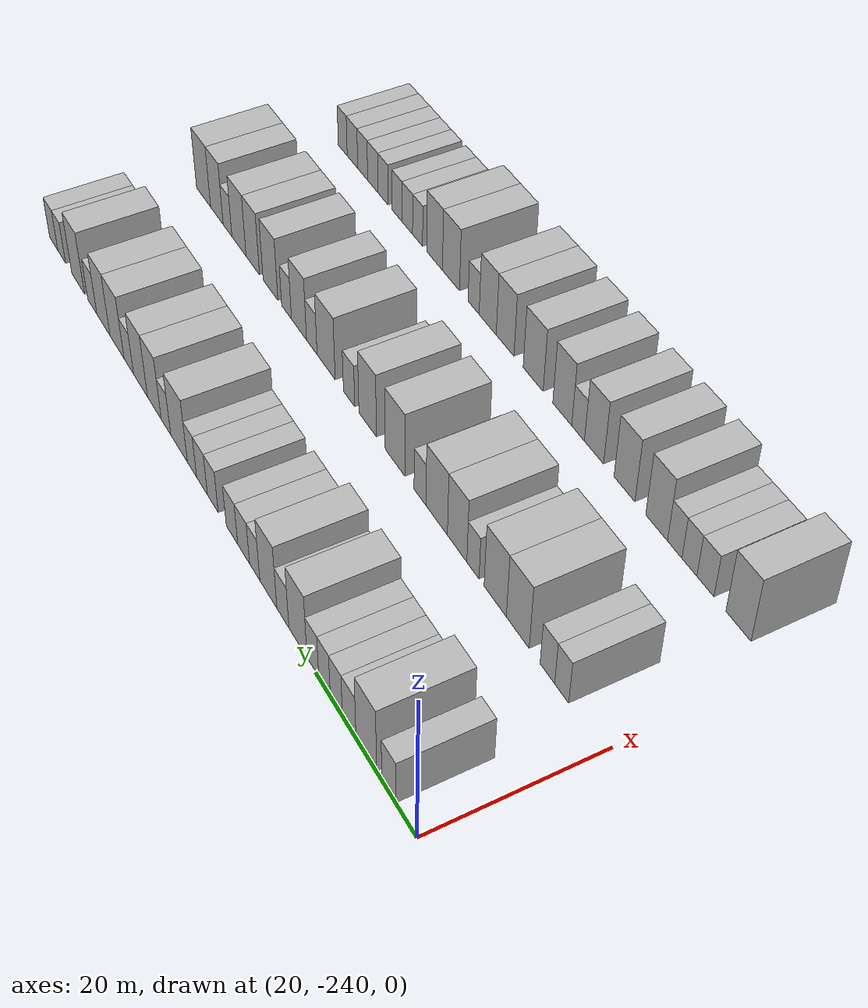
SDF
<sdf version="1.6">
 <world name="default">
  <model name="building_1">
   <static>1</static>
   <pose>25.0000 -234.6481 0 0.000000 0.000000 0.000000</pose>
   <link name="link">
    <pose>0 0 3.00 0 0 0</pose>
    <collision name="collision"><geometry><box><size>10.0000 2.7038 6.0000</size></box></geometry></collision>
    <visual name="visual">
     <cast_shadows>0</cast_shadows>
     <geometry><box><size>10.0000 2.7038 6.0000</size></box></geometry>
     <material>
      <script>
       <uri>model://HANNAS_wall/materials/scripts</uri>
       <uri>model://HANNAS_wall/materials/textures</uri>
       <name>vrc/HANNAS_wall</name>
      </script>
     </material>
    </visual>
   </link>
  </model>
  <model name="building_2">
   <static>1</static>
   <pose>25.0000 -230.2623 0 0.000000 0.000000 0.000000</pose>
   <link name="link">
    <pose>0 0 4.50 0 0 0</pose>
    <collision name="collision"><geometry><box><size>10.0000 4.0678 9.0000</size></box></geometry></collision>
    <visual name="visual">
     <cast_shadows>0</cast_shadows>
     <geometry><box><size>10.0000 4.0678 9.0000</size></box></geometry>
     <material>
      <script>
       <uri>model://HANNAS_wall/materials/scripts</uri>
       <uri>model://HANNAS_wall/materials/textures</uri>
       <name>vrc/HANNAS_wall</name>
      </script>
     </material>
    </visual>
   </link>
  </model>
  <model name="building_3">
   <static>1</static>
   <pose>25.0000 -226.8506 0 0.000000 0.000000 0.000000</pose>
   <link name="link">
    <pose>0 0 3.00 0 0 0</pose>
    <collision name="collision"><geometry><box><size>10.0000 2.7557 6.0000</size></box></geometry></collision>
    <visual name="visual">
     <cast_shadows>0</cast_shadows>
     <geometry><box><size>10.0000 2.7557 6.0000</size></box></geometry>
     <material>
      <script>
       <uri>model://HANNAS_wall/materials/scripts</uri>
       <uri>model://HANNAS_wall/materials/textures</uri>
       <name>vrc/HANNAS_wall</name>
      </script>
     </material>
    </visual>
   </link>
  </model>
  <model name="building_4">
   <static>1</static>
   <pose>25.0000 -224.2279 0 0.000000 0.000000 0.000000</pose>
   <link name="link">
    <pose>0 0 3.00 0 0 0</pose>
    <collision name="collision"><geometry><box><size>10.0000 2.4896 6.0000</size></box></geometry></collision>
    <visual name="visual">
     <cast_shadows>0</cast_shadows>
     <geometry><box><size>10.0000 2.4896 6.0000</size></box></geometry>
     <material>
      <script>
       <uri>model://HANNAS_wall/materials/scripts</uri>
       <uri>model://HANNAS_wall/materials/textures</uri>
       <name>vrc/HANNAS_wall</name>
      </script>
     </material>
    </visual>
   </link>
  </model>
  <model name="building_5">
   <static>1</static>
   <pose>25.0000 -221.7675 0 0.000000 0.000000 0.000000</pose>
   <link name="link">
    <pose>0 0 3.00 0 0 0</pose>
    <collision name="collision"><geometry><box><size>10.0000 2.4312 6.0000</size></box></geometry></collision>
    <visual name="visual">
     <cast_shadows>0</cast_shadows>
     <geometry><box><size>10.0000 2.4312 6.0000</size></box></geometry>
     <material>
      <script>
       <uri>model://HANNAS_wall/materials/scripts</uri>
       <uri>model://HANNAS_wall/materials/textures</uri>
       <name>vrc/HANNAS_wall</name>
      </script>
     </material>
    </visual>
   </link>
  </model>
  <model name="building_6">
   <static>1</static>
   <pose>25.0000 -219.2975 0 0.000000 0.000000 0.000000</pose>
   <link name="link">
    <pose>0 0 3.00 0 0 0</pose>
    <collision name="collision"><geometry><box><size>10.0000 2.5089 6.0000</size></box></geometry></collision>
    <visual name="visual">
     <cast_shadows>0</cast_shadows>
     <geometry><box><size>10.0000 2.5089 6.0000</size></box></geometry>
     <material>
      <script>
       <uri>model://HANNAS_wall/materials/scripts</uri>
       <uri>model://HANNAS_wall/materials/textures</uri>
       <name>vrc/HANNAS_wall</name>
      </script>
     </material>
    </visual>
   </link>
  </model>
  <model name="building_7">
   <static>1</static>
   <pose>25.0000 -216.0618 0 0.000000 0.000000 0.000000</pose>
   <link name="link">
    <pose>0 0 4.50 0 0 0</pose>
    <collision name="collision"><geometry><box><size>10.0000 3.9624 9.0000</size></box></geometry></collision>
    <visual name="visual">
     <cast_shadows>0</cast_shadows>
     <geometry><box><size>10.0000 3.9624 9.0000</size></box></geometry>
     <material>
      <script>
       <uri>model://HANNAS_wall/materials/scripts</uri>
       <uri>model://HANNAS_wall/materials/textures</uri>
       <name>vrc/HANNAS_wall</name>
      </script>
     </material>
    </visual>
   </link>
  </model>
  <model name="building_8">
   <static>1</static>
   <pose>25.0000 -212.7326 0 0.000000 0.000000 0.000000</pose>
   <link name="link">
    <pose>0 0 3.00 0 0 0</pose>
    <collision name="collision"><geometry><box><size>10.0000 2.6959 6.0000</size></box></geometry></collision>
    <visual name="visual">
     <cast_shadows>0</cast_shadows>
     <geometry><box><size>10.0000 2.6959 6.0000</size></box></geometry>
     <material>
      <script>
       <uri>model://HANNAS_wall/materials/scripts</uri>
       <uri>model://HANNAS_wall/materials/textures</uri>
       <name>vrc/HANNAS_wall</name>
      </script>
     </material>
    </visual>
   </link>
  </model>
  <model name="building_9">
   <static>1</static>
   <pose>25.0000 -209.4204 0 0.000000 0.000000 0.000000</pose>
   <link name="link">
    <pose>0 0 4.50 0 0 0</pose>
    <collision name="collision"><geometry><box><size>10.0000 3.9286 9.0000</size></box></geometry></collision>
    <visual name="visual">
     <cast_shadows>0</cast_shadows>
     <geometry><box><size>10.0000 3.9286 9.0000</size></box></geometry>
     <material>
      <script>
       <uri>model://HANNAS_wall/materials/scripts</uri>
       <uri>model://HANNAS_wall/materials/textures</uri>
       <name>vrc/HANNAS_wall</name>
      </script>
     </material>
    </visual>
   </link>
  </model>
  <model name="building_10">
   <static>1</static>
   <pose>25.0000 -206.2561 0 0.000000 0.000000 0.000000</pose>
   <link name="link">
    <pose>0 0 3.00 0 0 0</pose>
    <collision name="collision"><geometry><box><size>10.0000 2.4000 6.0000</size></box></geometry></collision>
    <visual name="visual">
     <cast_shadows>0</cast_shadows>
     <geometry><box><size>10.0000 2.4000 6.0000</size></box></geometry>
     <material>
      <script>
       <uri>model://HANNAS_wall/materials/scripts</uri>
       <uri>model://HANNAS_wall/materials/textures</uri>
       <name>vrc/HANNAS_wall</name>
      </script>
     </material>
    </visual>
   </link>
  </model>
  <model name="building_11">
   <static>1</static>
   <pose>25.0000 -203.6401 0 0.000000 0.000000 0.000000</pose>
   <link name="link">
    <pose>0 0 3.00 0 0 0</pose>
    <collision name="collision"><geometry><box><size>10.0000 2.8320 6.0000</size></box></geometry></collision>
    <visual name="visual">
     <cast_shadows>0</cast_shadows>
     <geometry><box><size>10.0000 2.8320 6.0000</size></box></geometry>
     <material>
      <script>
       <uri>model://HANNAS_wall/materials/scripts</uri>
       <uri>model://HANNAS_wall/materials/textures</uri>
       <name>vrc/HANNAS_wall</name>
      </script>
     </material>
    </visual>
   </link>
  </model>
  <model name="building_12">
   <static>1</static>
   <pose>25.0000 -200.8274 0 0.000000 0.000000 0.000000</pose>
   <link name="link">
    <pose>0 0 3.00 0 0 0</pose>
    <collision name="collision"><geometry><box><size>10.0000 2.7935 6.0000</size></box></geometry></collision>
    <visual name="visual">
     <cast_shadows>0</cast_shadows>
     <geometry><box><size>10.0000 2.7935 6.0000</size></box></geometry>
     <material>
      <script>
       <uri>model://HANNAS_wall/materials/scripts</uri>
       <uri>model://HANNAS_wall/materials/textures</uri>
       <name>vrc/HANNAS_wall</name>
      </script>
     </material>
    </visual>
   </link>
  </model>
  <model name="building_13">
   <static>1</static>
   <pose>25.0000 -196.0724 0 0.000000 0.000000 0.000000</pose>
   <link name="link">
    <pose>0 0 3.00 0 0 0</pose>
    <collision name="collision"><geometry><box><size>10.0000 2.7164 6.0000</size></box></geometry></collision>
    <visual name="visual">
     <cast_shadows>0</cast_shadows>
     <geometry><box><size>10.0000 2.7164 6.0000</size></box></geometry>
     <material>
      <script>
       <uri>model://HANNAS_wall/materials/scripts</uri>
       <uri>model://HANNAS_wall/materials/textures</uri>
       <name>vrc/HANNAS_wall</name>
      </script>
     </material>
    </visual>
   </link>
  </model>
  <model name="building_14">
   <static>1</static>
   <pose>25.0000 -193.3266 0 0.000000 0.000000 0.000000</pose>
   <link name="link">
    <pose>0 0 3.00 0 0 0</pose>
    <collision name="collision"><geometry><box><size>10.0000 2.7752 6.0000</size></box></geometry></collision>
    <visual name="visual">
     <cast_shadows>0</cast_shadows>
     <geometry><box><size>10.0000 2.7752 6.0000</size></box></geometry>
     <material>
      <script>
       <uri>model://HANNAS_wall/materials/scripts</uri>
       <uri>model://HANNAS_wall/materials/textures</uri>
       <name>vrc/HANNAS_wall</name>
      </script>
     </material>
    </visual>
   </link>
  </model>
  <model name="building_15">
   <static>1</static>
   <pose>25.0000 -190.7367 0 0.000000 0.000000 0.000000</pose>
   <link name="link">
    <pose>0 0 3.00 0 0 0</pose>
    <collision name="collision"><geometry><box><size>10.0000 2.4047 6.0000</size></box></geometry></collision>
    <visual name="visual">
     <cast_shadows>0</cast_shadows>
     <geometry><box><size>10.0000 2.4047 6.0000</size></box></geometry>
     <material>
      <script>
       <uri>model://HANNAS_wall/materials/scripts</uri>
       <uri>model://HANNAS_wall/materials/textures</uri>
       <name>vrc/HANNAS_wall</name>
      </script>
     </material>
    </visual>
   </link>
  </model>
  <model name="building_16">
   <static>1</static>
   <pose>25.0000 -187.3054 0 0.000000 0.000000 0.000000</pose>
   <link name="link">
    <pose>0 0 4.50 0 0 0</pose>
    <collision name="collision"><geometry><box><size>10.0000 4.4580 9.0000</size></box></geometry></collision>
    <visual name="visual">
     <cast_shadows>0</cast_shadows>
     <geometry><box><size>10.0000 4.4580 9.0000</size></box></geometry>
     <material>
      <script>
       <uri>model://HANNAS_wall/materials/scripts</uri>
       <uri>model://HANNAS_wall/materials/textures</uri>
       <name>vrc/HANNAS_wall</name>
      </script>
     </material>
    </visual>
   </link>
  </model>
  <model name="building_17">
   <static>1</static>
   <pose>25.0000 -183.7864 0 0.000000 0.000000 0.000000</pose>
   <link name="link">
    <pose>0 0 3.00 0 0 0</pose>
    <collision name="collision"><geometry><box><size>10.0000 2.5800 6.0000</size></box></geometry></collision>
    <visual name="visual">
     <cast_shadows>0</cast_shadows>
     <geometry><box><size>10.0000 2.5800 6.0000</size></box></geometry>
     <material>
      <script>
       <uri>model://HANNAS_wall/materials/scripts</uri>
       <uri>model://HANNAS_wall/materials/textures</uri>
       <name>vrc/HANNAS_wall</name>
      </script>
     </material>
    </visual>
   </link>
  </model>
  <model name="building_18">
   <static>1</static>
   <pose>25.0000 -180.5809 0 0.000000 0.000000 0.000000</pose>
   <link name="link">
    <pose>0 0 4.50 0 0 0</pose>
    <collision name="collision"><geometry><box><size>10.0000 3.8311 9.0000</size></box></geometry></collision>
    <visual name="visual">
     <cast_shadows>0</cast_shadows>
     <geometry><box><size>10.0000 3.8311 9.0000</size></box></geometry>
     <material>
      <script>
       <uri>model://HANNAS_wall/materials/scripts</uri>
       <uri>model://HANNAS_wall/materials/textures</uri>
       <name>vrc/HANNAS_wall</name>
      </script>
     </material>
    </visual>
   </link>
  </model>
  <model name="building_19">
   <static>1</static>
   <pose>25.0000 -176.6732 0 0.000000 0.000000 0.000000</pose>
   <link name="link">
    <pose>0 0 4.50 0 0 0</pose>
    <collision name="collision"><geometry><box><size>10.0000 3.9841 9.0000</size></box></geometry></collision>
    <visual name="visual">
     <cast_shadows>0</cast_shadows>
     <geometry><box><size>10.0000 3.9841 9.0000</size></box></geometry>
     <material>
      <script>
       <uri>model://HANNAS_wall/materials/scripts</uri>
       <uri>model://HANNAS_wall/materials/textures</uri>
       <name>vrc/HANNAS_wall</name>
      </script>
     </material>
    </visual>
   </link>
  </model>
  <model name="building_20">
   <static>1</static>
   <pose>25.0000 -173.2971 0 0.000000 0.000000 0.000000</pose>
   <link name="link">
    <pose>0 0 3.00 0 0 0</pose>
    <collision name="collision"><geometry><box><size>10.0000 2.7682 6.0000</size></box></geometry></collision>
    <visual name="visual">
     <cast_shadows>0</cast_shadows>
     <geometry><box><size>10.0000 2.7682 6.0000</size></box></geometry>
     <material>
      <script>
       <uri>model://HANNAS_wall/materials/scripts</uri>
       <uri>model://HANNAS_wall/materials/textures</uri>
       <name>vrc/HANNAS_wall</name>
      </script>
     </material>
    </visual>
   </link>
  </model>
  <model name="building_21">
   <static>1</static>
   <pose>25.0000 -169.8060 0 0.000000 0.000000 0.000000</pose>
   <link name="link">
    <pose>0 0 4.50 0 0 0</pose>
    <collision name="collision"><geometry><box><size>10.0000 4.2139 9.0000</size></box></geometry></collision>
    <visual name="visual">
     <cast_shadows>0</cast_shadows>
     <geometry><box><size>10.0000 4.2139 9.0000</size></box></geometry>
     <material>
      <script>
       <uri>model://HANNAS_wall/materials/scripts</uri>
       <uri>model://HANNAS_wall/materials/textures</uri>
       <name>vrc/HANNAS_wall</name>
      </script>
     </material>
    </visual>
   </link>
  </model>
  <model name="building_22">
   <static>1</static>
   <pose>25.0000 -165.6899 0 0.000000 0.000000 0.000000</pose>
   <link name="link">
    <pose>0 0 4.50 0 0 0</pose>
    <collision name="collision"><geometry><box><size>10.0000 4.0185 9.0000</size></box></geometry></collision>
    <visual name="visual">
     <cast_shadows>0</cast_shadows>
     <geometry><box><size>10.0000 4.0185 9.0000</size></box></geometry>
     <material>
      <script>
       <uri>model://HANNAS_wall/materials/scripts</uri>
       <uri>model://HANNAS_wall/materials/textures</uri>
       <name>vrc/HANNAS_wall</name>
      </script>
     </material>
    </visual>
   </link>
  </model>
  <model name="building_23">
   <static>1</static>
   <pose>25.0000 -162.2572 0 0.000000 0.000000 0.000000</pose>
   <link name="link">
    <pose>0 0 3.00 0 0 0</pose>
    <collision name="collision"><geometry><box><size>10.0000 2.8468 6.0000</size></box></geometry></collision>
    <visual name="visual">
     <cast_shadows>0</cast_shadows>
     <geometry><box><size>10.0000 2.8468 6.0000</size></box></geometry>
     <material>
      <script>
       <uri>model://HANNAS_wall/materials/scripts</uri>
       <uri>model://HANNAS_wall/materials/textures</uri>
       <name>vrc/HANNAS_wall</name>
      </script>
     </material>
    </visual>
   </link>
  </model>
  <model name="building_24">
   <static>1</static>
   <pose>25.0000 -157.7690 0 0.000000 0.000000 0.000000</pose>
   <link name="link">
    <pose>0 0 4.50 0 0 0</pose>
    <collision name="collision"><geometry><box><size>10.0000 4.1296 9.0000</size></box></geometry></collision>
    <visual name="visual">
     <cast_shadows>0</cast_shadows>
     <geometry><box><size>10.0000 4.1296 9.0000</size></box></geometry>
     <material>
      <script>
       <uri>model://HANNAS_wall/materials/scripts</uri>
       <uri>model://HANNAS_wall/materials/textures</uri>
       <name>vrc/HANNAS_wall</name>
      </script>
     </material>
    </visual>
   </link>
  </model>
  <model name="building_25">
   <static>1</static>
   <pose>25.0000 -152.4329 0 0.000000 0.000000 0.000000</pose>
   <link name="link">
    <pose>0 0 3.00 0 0 0</pose>
    <collision name="collision"><geometry><box><size>10.0000 2.5426 6.0000</size></box></geometry></collision>
    <visual name="visual">
     <cast_shadows>0</cast_shadows>
     <geometry><box><size>10.0000 2.5426 6.0000</size></box></geometry>
     <material>
      <script>
       <uri>model://HANNAS_wall/materials/scripts</uri>
       <uri>model://HANNAS_wall/materials/textures</uri>
       <name>vrc/HANNAS_wall</name>
      </script>
     </material>
    </visual>
   </link>
  </model>
  <model name="building_26">
   <static>1</static>
   <pose>25.0000 -149.7893 0 0.000000 0.000000 0.000000</pose>
   <link name="link">
    <pose>0 0 3.00 0 0 0</pose>
    <collision name="collision"><geometry><box><size>10.0000 2.7446 6.0000</size></box></geometry></collision>
    <visual name="visual">
     <cast_shadows>0</cast_shadows>
     <geometry><box><size>10.0000 2.7446 6.0000</size></box></geometry>
     <material>
      <script>
       <uri>model://HANNAS_wall/materials/scripts</uri>
       <uri>model://HANNAS_wall/materials/textures</uri>
       <name>vrc/HANNAS_wall</name>
      </script>
     </material>
    </visual>
   </link>
  </model>
  <model name="building_125">
   <static>1</static>
   <pose>44.0000 -232.7569 0 0.000000 0.000000 0.000000</pose>
   <link name="link">
    <pose>0 0 3.00 0 0 0</pose>
    <collision name="collision"><geometry><box><size>10.0000 2.4863 6.0000</size></box></geometry></collision>
    <visual name="visual">
     <cast_shadows>0</cast_shadows>
     <geometry><box><size>10.0000 2.4863 6.0000</size></box></geometry>
     <material>
      <script>
       <uri>model://HANNAS_wall/materials/scripts</uri>
       <uri>model://HANNAS_wall/materials/textures</uri>
       <name>vrc/HANNAS_wall</name>
      </script>
     </material>
    </visual>
   </link>
  </model>
  <model name="building_126">
   <static>1</static>
   <pose>44.0000 -230.1991 0 0.000000 0.000000 0.000000</pose>
   <link name="link">
    <pose>0 0 3.00 0 0 0</pose>
    <collision name="collision"><geometry><box><size>10.0000 2.6292 6.0000</size></box></geometry></collision>
    <visual name="visual">
     <cast_shadows>0</cast_shadows>
     <geometry><box><size>10.0000 2.6292 6.0000</size></box></geometry>
     <material>
      <script>
       <uri>model://HANNAS_wall/materials/scripts</uri>
       <uri>model://HANNAS_wall/materials/textures</uri>
       <name>vrc/HANNAS_wall</name>
      </script>
     </material>
    </visual>
   </link>
  </model>
  <model name="building_127">
   <static>1</static>
   <pose>44.0000 -224.7389 0 0.000000 0.000000 0.000000</pose>
   <link name="link">
    <pose>0 0 4.50 0 0 0</pose>
    <collision name="collision"><geometry><box><size>10.0000 4.2913 9.0000</size></box></geometry></collision>
    <visual name="visual">
     <cast_shadows>0</cast_shadows>
     <geometry><box><size>10.0000 4.2913 9.0000</size></box></geometry>
     <material>
      <script>
       <uri>model://HANNAS_wall/materials/scripts</uri>
       <uri>model://HANNAS_wall/materials/textures</uri>
       <name>vrc/HANNAS_wall</name>
      </script>
     </material>
    </visual>
   </link>
  </model>
  <model name="building_128">
   <static>1</static>
   <pose>44.0000 -220.4427 0 0.000000 0.000000 0.000000</pose>
   <link name="link">
    <pose>0 0 4.50 0 0 0</pose>
    <collision name="collision"><geometry><box><size>10.0000 4.3011 9.0000</size></box></geometry></collision>
    <visual name="visual">
     <cast_shadows>0</cast_shadows>
     <geometry><box><size>10.0000 4.3011 9.0000</size></box></geometry>
     <material>
      <script>
       <uri>model://HANNAS_wall/materials/scripts</uri>
       <uri>model://HANNAS_wall/materials/textures</uri>
       <name>vrc/HANNAS_wall</name>
      </script>
     </material>
    </visual>
   </link>
  </model>
  <model name="building_129">
   <static>1</static>
   <pose>44.0000 -216.0761 0 0.000000 0.000000 0.000000</pose>
   <link name="link">
    <pose>0 0 3.00 0 0 0</pose>
    <collision name="collision"><geometry><box><size>10.0000 2.4320 6.0000</size></box></geometry></collision>
    <visual name="visual">
     <cast_shadows>0</cast_shadows>
     <geometry><box><size>10.0000 2.4320 6.0000</size></box></geometry>
     <material>
      <script>
       <uri>model://HANNAS_wall/materials/scripts</uri>
       <uri>model://HANNAS_wall/materials/textures</uri>
       <name>vrc/HANNAS_wall</name>
      </script>
     </material>
    </visual>
   </link>
  </model>
  <model name="building_130">
   <static>1</static>
   <pose>44.0000 -212.8763 0 0.000000 0.000000 0.000000</pose>
   <link name="link">
    <pose>0 0 4.50 0 0 0</pose>
    <collision name="collision"><geometry><box><size>10.0000 3.9676 9.0000</size></box></geometry></collision>
    <visual name="visual">
     <cast_shadows>0</cast_shadows>
     <geometry><box><size>10.0000 3.9676 9.0000</size></box></geometry>
     <material>
      <script>
       <uri>model://HANNAS_wall/materials/scripts</uri>
       <uri>model://HANNAS_wall/materials/textures</uri>
       <name>vrc/HANNAS_wall</name>
      </script>
     </material>
    </visual>
   </link>
  </model>
  <model name="building_131">
   <static>1</static>
   <pose>44.0000 -208.6429 0 0.000000 0.000000 0.000000</pose>
   <link name="link">
    <pose>0 0 4.50 0 0 0</pose>
    <collision name="collision"><geometry><box><size>10.0000 4.4991 9.0000</size></box></geometry></collision>
    <visual name="visual">
     <cast_shadows>0</cast_shadows>
     <geometry><box><size>10.0000 4.4991 9.0000</size></box></geometry>
     <material>
      <script>
       <uri>model://HANNAS_wall/materials/scripts</uri>
       <uri>model://HANNAS_wall/materials/textures</uri>
       <name>vrc/HANNAS_wall</name>
      </script>
     </material>
    </visual>
   </link>
  </model>
  <model name="building_132">
   <static>1</static>
   <pose>44.0000 -205.1088 0 0.000000 0.000000 0.000000</pose>
   <link name="link">
    <pose>0 0 3.00 0 0 0</pose>
    <collision name="collision"><geometry><box><size>10.0000 2.5690 6.0000</size></box></geometry></collision>
    <visual name="visual">
     <cast_shadows>0</cast_shadows>
     <geometry><box><size>10.0000 2.5690 6.0000</size></box></geometry>
     <material>
      <script>
       <uri>model://HANNAS_wall/materials/scripts</uri>
       <uri>model://HANNAS_wall/materials/textures</uri>
       <name>vrc/HANNAS_wall</name>
      </script>
     </material>
    </visual>
   </link>
  </model>
  <model name="building_133">
   <static>1</static>
   <pose>44.0000 -199.6345 0 0.000000 0.000000 0.000000</pose>
   <link name="link">
    <pose>0 0 4.50 0 0 0</pose>
    <collision name="collision"><geometry><box><size>10.0000 4.3795 9.0000</size></box></geometry></collision>
    <visual name="visual">
     <cast_shadows>0</cast_shadows>
     <geometry><box><size>10.0000 4.3795 9.0000</size></box></geometry>
     <material>
      <script>
       <uri>model://HANNAS_wall/materials/scripts</uri>
       <uri>model://HANNAS_wall/materials/textures</uri>
       <name>vrc/HANNAS_wall</name>
      </script>
     </material>
    </visual>
   </link>
  </model>
  <model name="building_134">
   <static>1</static>
   <pose>44.0000 -193.4110 0 0.000000 0.000000 0.000000</pose>
   <link name="link">
    <pose>0 0 4.50 0 0 0</pose>
    <collision name="collision"><geometry><box><size>10.0000 4.0676 9.0000</size></box></geometry></collision>
    <visual name="visual">
     <cast_shadows>0</cast_shadows>
     <geometry><box><size>10.0000 4.0676 9.0000</size></box></geometry>
     <material>
      <script>
       <uri>model://HANNAS_wall/materials/scripts</uri>
       <uri>model://HANNAS_wall/materials/textures</uri>
       <name>vrc/HANNAS_wall</name>
      </script>
     </material>
    </visual>
   </link>
  </model>
  <model name="building_135">
   <static>1</static>
   <pose>44.0000 -189.0309 0 0.000000 0.000000 0.000000</pose>
   <link name="link">
    <pose>0 0 3.00 0 0 0</pose>
    <collision name="collision"><geometry><box><size>10.0000 2.6925 6.0000</size></box></geometry></collision>
    <visual name="visual">
     <cast_shadows>0</cast_shadows>
     <geometry><box><size>10.0000 2.6925 6.0000</size></box></geometry>
     <material>
      <script>
       <uri>model://HANNAS_wall/materials/scripts</uri>
       <uri>model://HANNAS_wall/materials/textures</uri>
       <name>vrc/HANNAS_wall</name>
      </script>
     </material>
    </visual>
   </link>
  </model>
  <model name="building_136">
   <static>1</static>
   <pose>44.0000 -183.4459 0 0.000000 0.000000 0.000000</pose>
   <link name="link">
    <pose>0 0 4.50 0 0 0</pose>
    <collision name="collision"><geometry><box><size>10.0000 4.4775 9.0000</size></box></geometry></collision>
    <visual name="visual">
     <cast_shadows>0</cast_shadows>
     <geometry><box><size>10.0000 4.4775 9.0000</size></box></geometry>
     <material>
      <script>
       <uri>model://HANNAS_wall/materials/scripts</uri>
       <uri>model://HANNAS_wall/materials/textures</uri>
       <name>vrc/HANNAS_wall</name>
      </script>
     </material>
    </visual>
   </link>
  </model>
  <model name="building_137">
   <static>1</static>
   <pose>44.0000 -179.8754 0 0.000000 0.000000 0.000000</pose>
   <link name="link">
    <pose>0 0 3.00 0 0 0</pose>
    <collision name="collision"><geometry><box><size>10.0000 2.6635 6.0000</size></box></geometry></collision>
    <visual name="visual">
     <cast_shadows>0</cast_shadows>
     <geometry><box><size>10.0000 2.6635 6.0000</size></box></geometry>
     <material>
      <script>
       <uri>model://HANNAS_wall/materials/scripts</uri>
       <uri>model://HANNAS_wall/materials/textures</uri>
       <name>vrc/HANNAS_wall</name>
      </script>
     </material>
    </visual>
   </link>
  </model>
  <model name="building_138">
   <static>1</static>
   <pose>44.0000 -176.5899 0 0.000000 0.000000 0.000000</pose>
   <link name="link">
    <pose>0 0 4.50 0 0 0</pose>
    <collision name="collision"><geometry><box><size>10.0000 3.9077 9.0000</size></box></geometry></collision>
    <visual name="visual">
     <cast_shadows>0</cast_shadows>
     <geometry><box><size>10.0000 3.9077 9.0000</size></box></geometry>
     <material>
      <script>
       <uri>model://HANNAS_wall/materials/scripts</uri>
       <uri>model://HANNAS_wall/materials/textures</uri>
       <name>vrc/HANNAS_wall</name>
      </script>
     </material>
    </visual>
   </link>
  </model>
  <model name="building_139">
   <static>1</static>
   <pose>44.0000 -173.3482 0 0.000000 0.000000 0.000000</pose>
   <link name="link">
    <pose>0 0 3.00 0 0 0</pose>
    <collision name="collision"><geometry><box><size>10.0000 2.5755 6.0000</size></box></geometry></collision>
    <visual name="visual">
     <cast_shadows>0</cast_shadows>
     <geometry><box><size>10.0000 2.5755 6.0000</size></box></geometry>
     <material>
      <script>
       <uri>model://HANNAS_wall/materials/scripts</uri>
       <uri>model://HANNAS_wall/materials/textures</uri>
       <name>vrc/HANNAS_wall</name>
      </script>
     </material>
    </visual>
   </link>
  </model>
  <model name="building_140">
   <static>1</static>
   <pose>44.0000 -169.0680 0 0.000000 0.000000 0.000000</pose>
   <link name="link">
    <pose>0 0 4.50 0 0 0</pose>
    <collision name="collision"><geometry><box><size>10.0000 3.9850 9.0000</size></box></geometry></collision>
    <visual name="visual">
     <cast_shadows>0</cast_shadows>
     <geometry><box><size>10.0000 3.9850 9.0000</size></box></geometry>
     <material>
      <script>
       <uri>model://HANNAS_wall/materials/scripts</uri>
       <uri>model://HANNAS_wall/materials/textures</uri>
       <name>vrc/HANNAS_wall</name>
      </script>
     </material>
    </visual>
   </link>
  </model>
  <model name="building_141">
   <static>1</static>
   <pose>44.0000 -164.2095 0 0.000000 0.000000 0.000000</pose>
   <link name="link">
    <pose>0 0 4.50 0 0 0</pose>
    <collision name="collision"><geometry><box><size>10.0000 3.7321 9.0000</size></box></geometry></collision>
    <visual name="visual">
     <cast_shadows>0</cast_shadows>
     <geometry><box><size>10.0000 3.7321 9.0000</size></box></geometry>
     <material>
      <script>
       <uri>model://HANNAS_wall/materials/scripts</uri>
       <uri>model://HANNAS_wall/materials/textures</uri>
       <name>vrc/HANNAS_wall</name>
      </script>
     </material>
    </visual>
   </link>
  </model>
  <model name="building_142">
   <static>1</static>
   <pose>44.0000 -160.3380 0 0.000000 0.000000 0.000000</pose>
   <link name="link">
    <pose>0 0 4.50 0 0 0</pose>
    <collision name="collision"><geometry><box><size>10.0000 4.0108 9.0000</size></box></geometry></collision>
    <visual name="visual">
     <cast_shadows>0</cast_shadows>
     <geometry><box><size>10.0000 4.0108 9.0000</size></box></geometry>
     <material>
      <script>
       <uri>model://HANNAS_wall/materials/scripts</uri>
       <uri>model://HANNAS_wall/materials/textures</uri>
       <name>vrc/HANNAS_wall</name>
      </script>
     </material>
    </visual>
   </link>
  </model>
  <model name="building_143">
   <static>1</static>
   <pose>44.0000 -157.0587 0 0.000000 0.000000 0.000000</pose>
   <link name="link">
    <pose>0 0 3.00 0 0 0</pose>
    <collision name="collision"><geometry><box><size>10.0000 2.5477 6.0000</size></box></geometry></collision>
    <visual name="visual">
     <cast_shadows>0</cast_shadows>
     <geometry><box><size>10.0000 2.5477 6.0000</size></box></geometry>
     <material>
      <script>
       <uri>model://HANNAS_wall/materials/scripts</uri>
       <uri>model://HANNAS_wall/materials/textures</uri>
       <name>vrc/HANNAS_wall</name>
      </script>
     </material>
    </visual>
   </link>
  </model>
  <model name="building_144">
   <static>1</static>
   <pose>44.0000 -153.9371 0 0.000000 0.000000 0.000000</pose>
   <link name="link">
    <pose>0 0 4.50 0 0 0</pose>
    <collision name="collision"><geometry><box><size>10.0000 3.6954 9.0000</size></box></geometry></collision>
    <visual name="visual">
     <cast_shadows>0</cast_shadows>
     <geometry><box><size>10.0000 3.6954 9.0000</size></box></geometry>
     <material>
      <script>
       <uri>model://HANNAS_wall/materials/scripts</uri>
       <uri>model://HANNAS_wall/materials/textures</uri>
       <name>vrc/HANNAS_wall</name>
      </script>
     </material>
    </visual>
   </link>
  </model>
  <model name="building_145">
   <static>1</static>
   <pose>44.0000 -149.9729 0 0.000000 0.000000 0.000000</pose>
   <link name="link">
    <pose>0 0 4.50 0 0 0</pose>
    <collision name="collision"><geometry><box><size>10.0000 4.2332 9.0000</size></box></geometry></collision>
    <visual name="visual">
     <cast_shadows>0</cast_shadows>
     <geometry><box><size>10.0000 4.2332 9.0000</size></box></geometry>
     <material>
      <script>
       <uri>model://HANNAS_wall/materials/scripts</uri>
       <uri>model://HANNAS_wall/materials/textures</uri>
       <name>vrc/HANNAS_wall</name>
      </script>
     </material>
    </visual>
   </link>
  </model>
  <model name="building_233">
   <static>1</static>
   <pose>63.0000 -233.9388 0 0.000000 0.000000 0.000000</pose>
   <link name="link">
    <pose>0 0 4.50 0 0 0</pose>
    <collision name="collision"><geometry><box><size>10.0000 4.1223 9.0000</size></box></geometry></collision>
    <visual name="visual">
     <cast_shadows>0</cast_shadows>
     <geometry><box><size>10.0000 4.1223 9.0000</size></box></geometry>
     <material>
      <script>
       <uri>model://HANNAS_wall/materials/scripts</uri>
       <uri>model://HANNAS_wall/materials/textures</uri>
       <name>vrc/HANNAS_wall</name>
      </script>
     </material>
    </visual>
   </link>
  </model>
  <model name="building_234">
   <static>1</static>
   <pose>63.0000 -228.4174 0 0.000000 0.000000 0.000000</pose>
   <link name="link">
    <pose>0 0 3.00 0 0 0</pose>
    <collision name="collision"><geometry><box><size>10.0000 2.9205 6.0000</size></box></geometry></collision>
    <visual name="visual">
     <cast_shadows>0</cast_shadows>
     <geometry><box><size>10.0000 2.9205 6.0000</size></box></geometry>
     <material>
      <script>
       <uri>model://HANNAS_wall/materials/scripts</uri>
       <uri>model://HANNAS_wall/materials/textures</uri>
       <name>vrc/HANNAS_wall</name>
      </script>
     </material>
    </visual>
   </link>
  </model>
  <model name="building_235">
   <static>1</static>
   <pose>63.0000 -225.6605 0 0.000000 0.000000 0.000000</pose>
   <link name="link">
    <pose>0 0 3.00 0 0 0</pose>
    <collision name="collision"><geometry><box><size>10.0000 2.5933 6.0000</size></box></geometry></collision>
    <visual name="visual">
     <cast_shadows>0</cast_shadows>
     <geometry><box><size>10.0000 2.5933 6.0000</size></box></geometry>
     <material>
      <script>
       <uri>model://HANNAS_wall/materials/scripts</uri>
       <uri>model://HANNAS_wall/materials/textures</uri>
       <name>vrc/HANNAS_wall</name>
      </script>
     </material>
    </visual>
   </link>
  </model>
  <model name="building_236">
   <static>1</static>
   <pose>63.0000 -223.0857 0 0.000000 0.000000 0.000000</pose>
   <link name="link">
    <pose>0 0 3.00 0 0 0</pose>
    <collision name="collision"><geometry><box><size>10.0000 2.5563 6.0000</size></box></geometry></collision>
    <visual name="visual">
     <cast_shadows>0</cast_shadows>
     <geometry><box><size>10.0000 2.5563 6.0000</size></box></geometry>
     <material>
      <script>
       <uri>model://HANNAS_wall/materials/scripts</uri>
       <uri>model://HANNAS_wall/materials/textures</uri>
       <name>vrc/HANNAS_wall</name>
      </script>
     </material>
    </visual>
   </link>
  </model>
  <model name="building_237">
   <static>1</static>
   <pose>63.0000 -219.8384 0 0.000000 0.000000 0.000000</pose>
   <link name="link">
    <pose>0 0 4.50 0 0 0</pose>
    <collision name="collision"><geometry><box><size>10.0000 3.9382 9.0000</size></box></geometry></collision>
    <visual name="visual">
     <cast_shadows>0</cast_shadows>
     <geometry><box><size>10.0000 3.9382 9.0000</size></box></geometry>
     <material>
      <script>
       <uri>model://HANNAS_wall/materials/scripts</uri>
       <uri>model://HANNAS_wall/materials/textures</uri>
       <name>vrc/HANNAS_wall</name>
      </script>
     </material>
    </visual>
   </link>
  </model>
  <model name="building_238">
   <static>1</static>
   <pose>63.0000 -213.8990 0 0.000000 0.000000 0.000000</pose>
   <link name="link">
    <pose>0 0 4.50 0 0 0</pose>
    <collision name="collision"><geometry><box><size>10.0000 3.9406 9.0000</size></box></geometry></collision>
    <visual name="visual">
     <cast_shadows>0</cast_shadows>
     <geometry><box><size>10.0000 3.9406 9.0000</size></box></geometry>
     <material>
      <script>
       <uri>model://HANNAS_wall/materials/scripts</uri>
       <uri>model://HANNAS_wall/materials/textures</uri>
       <name>vrc/HANNAS_wall</name>
      </script>
     </material>
    </visual>
   </link>
  </model>
  <model name="building_239">
   <static>1</static>
   <pose>63.0000 -208.0524 0 0.000000 0.000000 0.000000</pose>
   <link name="link">
    <pose>0 0 4.50 0 0 0</pose>
    <collision name="collision"><geometry><box><size>10.0000 3.7527 9.0000</size></box></geometry></collision>
    <visual name="visual">
     <cast_shadows>0</cast_shadows>
     <geometry><box><size>10.0000 3.7527 9.0000</size></box></geometry>
     <material>
      <script>
       <uri>model://HANNAS_wall/materials/scripts</uri>
       <uri>model://HANNAS_wall/materials/textures</uri>
       <name>vrc/HANNAS_wall</name>
      </script>
     </material>
    </visual>
   </link>
  </model>
  <model name="building_240">
   <static>1</static>
   <pose>63.0000 -204.9037 0 0.000000 0.000000 0.000000</pose>
   <link name="link">
    <pose>0 0 3.00 0 0 0</pose>
    <collision name="collision"><geometry><box><size>10.0000 2.5447 6.0000</size></box></geometry></collision>
    <visual name="visual">
     <cast_shadows>0</cast_shadows>
     <geometry><box><size>10.0000 2.5447 6.0000</size></box></geometry>
     <material>
      <script>
       <uri>model://HANNAS_wall/materials/scripts</uri>
       <uri>model://HANNAS_wall/materials/textures</uri>
       <name>vrc/HANNAS_wall</name>
      </script>
     </material>
    </visual>
   </link>
  </model>
  <model name="building_241">
   <static>1</static>
   <pose>63.0000 -201.7048 0 0.000000 0.000000 0.000000</pose>
   <link name="link">
    <pose>0 0 4.50 0 0 0</pose>
    <collision name="collision"><geometry><box><size>10.0000 3.8530 9.0000</size></box></geometry></collision>
    <visual name="visual">
     <cast_shadows>0</cast_shadows>
     <geometry><box><size>10.0000 3.8530 9.0000</size></box></geometry>
     <material>
      <script>
       <uri>model://HANNAS_wall/materials/scripts</uri>
       <uri>model://HANNAS_wall/materials/textures</uri>
       <name>vrc/HANNAS_wall</name>
      </script>
     </material>
    </visual>
   </link>
  </model>
  <model name="building_242">
   <static>1</static>
   <pose>63.0000 -195.6646 0 0.000000 0.000000 0.000000</pose>
   <link name="link">
    <pose>0 0 4.50 0 0 0</pose>
    <collision name="collision"><geometry><box><size>10.0000 4.2275 9.0000</size></box></geometry></collision>
    <visual name="visual">
     <cast_shadows>0</cast_shadows>
     <geometry><box><size>10.0000 4.2275 9.0000</size></box></geometry>
     <material>
      <script>
       <uri>model://HANNAS_wall/materials/scripts</uri>
       <uri>model://HANNAS_wall/materials/textures</uri>
       <name>vrc/HANNAS_wall</name>
      </script>
     </material>
    </visual>
   </link>
  </model>
  <model name="building_243">
   <static>1</static>
   <pose>63.0000 -189.6024 0 0.000000 0.000000 0.000000</pose>
   <link name="link">
    <pose>0 0 4.50 0 0 0</pose>
    <collision name="collision"><geometry><box><size>10.0000 3.8969 9.0000</size></box></geometry></collision>
    <visual name="visual">
     <cast_shadows>0</cast_shadows>
     <geometry><box><size>10.0000 3.8969 9.0000</size></box></geometry>
     <material>
      <script>
       <uri>model://HANNAS_wall/materials/scripts</uri>
       <uri>model://HANNAS_wall/materials/textures</uri>
       <name>vrc/HANNAS_wall</name>
      </script>
     </material>
    </visual>
   </link>
  </model>
  <model name="building_244">
   <static>1</static>
   <pose>63.0000 -185.7312 0 0.000000 0.000000 0.000000</pose>
   <link name="link">
    <pose>0 0 4.50 0 0 0</pose>
    <collision name="collision"><geometry><box><size>10.0000 3.8454 9.0000</size></box></geometry></collision>
    <visual name="visual">
     <cast_shadows>0</cast_shadows>
     <geometry><box><size>10.0000 3.8454 9.0000</size></box></geometry>
     <material>
      <script>
       <uri>model://HANNAS_wall/materials/scripts</uri>
       <uri>model://HANNAS_wall/materials/textures</uri>
       <name>vrc/HANNAS_wall</name>
      </script>
     </material>
    </visual>
   </link>
  </model>
  <model name="building_245">
   <static>1</static>
   <pose>63.0000 -182.5381 0 0.000000 0.000000 0.000000</pose>
   <link name="link">
    <pose>0 0 3.00 0 0 0</pose>
    <collision name="collision"><geometry><box><size>10.0000 2.5407 6.0000</size></box></geometry></collision>
    <visual name="visual">
     <cast_shadows>0</cast_shadows>
     <geometry><box><size>10.0000 2.5407 6.0000</size></box></geometry>
     <material>
      <script>
       <uri>model://HANNAS_wall/materials/scripts</uri>
       <uri>model://HANNAS_wall/materials/textures</uri>
       <name>vrc/HANNAS_wall</name>
      </script>
     </material>
    </visual>
   </link>
  </model>
  <model name="building_246">
   <static>1</static>
   <pose>63.0000 -177.2435 0 0.000000 0.000000 0.000000</pose>
   <link name="link">
    <pose>0 0 4.50 0 0 0</pose>
    <collision name="collision"><geometry><box><size>10.0000 4.0485 9.0000</size></box></geometry></collision>
    <visual name="visual">
     <cast_shadows>0</cast_shadows>
     <geometry><box><size>10.0000 4.0485 9.0000</size></box></geometry>
     <material>
      <script>
       <uri>model://HANNAS_wall/materials/scripts</uri>
       <uri>model://HANNAS_wall/materials/textures</uri>
       <name>vrc/HANNAS_wall</name>
      </script>
     </material>
    </visual>
   </link>
  </model>
  <model name="building_247">
   <static>1</static>
   <pose>63.0000 -173.2972 0 0.000000 0.000000 0.000000</pose>
   <link name="link">
    <pose>0 0 4.50 0 0 0</pose>
    <collision name="collision"><geometry><box><size>10.0000 3.8440 9.0000</size></box></geometry></collision>
    <visual name="visual">
     <cast_shadows>0</cast_shadows>
     <geometry><box><size>10.0000 3.8440 9.0000</size></box></geometry>
     <material>
      <script>
       <uri>model://HANNAS_wall/materials/scripts</uri>
       <uri>model://HANNAS_wall/materials/textures</uri>
       <name>vrc/HANNAS_wall</name>
      </script>
     </material>
    </visual>
   </link>
  </model>
  <model name="building_248">
   <static>1</static>
   <pose>63.0000 -169.1296 0 0.000000 0.000000 0.000000</pose>
   <link name="link">
    <pose>0 0 3.00 0 0 0</pose>
    <collision name="collision"><geometry><box><size>10.0000 2.4912 6.0000</size></box></geometry></collision>
    <visual name="visual">
     <cast_shadows>0</cast_shadows>
     <geometry><box><size>10.0000 2.4912 6.0000</size></box></geometry>
     <material>
      <script>
       <uri>model://HANNAS_wall/materials/scripts</uri>
       <uri>model://HANNAS_wall/materials/textures</uri>
       <name>vrc/HANNAS_wall</name>
      </script>
     </material>
    </visual>
   </link>
  </model>
  <model name="building_249">
   <static>1</static>
   <pose>63.0000 -166.5387 0 0.000000 0.000000 0.000000</pose>
   <link name="link">
    <pose>0 0 3.00 0 0 0</pose>
    <collision name="collision"><geometry><box><size>10.0000 2.6907 6.0000</size></box></geometry></collision>
    <visual name="visual">
     <cast_shadows>0</cast_shadows>
     <geometry><box><size>10.0000 2.6907 6.0000</size></box></geometry>
     <material>
      <script>
       <uri>model://HANNAS_wall/materials/scripts</uri>
       <uri>model://HANNAS_wall/materials/textures</uri>
       <name>vrc/HANNAS_wall</name>
      </script>
     </material>
    </visual>
   </link>
  </model>
  <model name="building_250">
   <static>1</static>
   <pose>63.0000 -163.9267 0 0.000000 0.000000 0.000000</pose>
   <link name="link">
    <pose>0 0 3.00 0 0 0</pose>
    <collision name="collision"><geometry><box><size>10.0000 2.5331 6.0000</size></box></geometry></collision>
    <visual name="visual">
     <cast_shadows>0</cast_shadows>
     <geometry><box><size>10.0000 2.5331 6.0000</size></box></geometry>
     <material>
      <script>
       <uri>model://HANNAS_wall/materials/scripts</uri>
       <uri>model://HANNAS_wall/materials/textures</uri>
       <name>vrc/HANNAS_wall</name>
      </script>
     </material>
    </visual>
   </link>
  </model>
  <model name="building_251">
   <static>1</static>
   <pose>63.0000 -160.3449 0 0.000000 0.000000 0.000000</pose>
   <link name="link">
    <pose>0 0 3.00 0 0 0</pose>
    <collision name="collision"><geometry><box><size>10.0000 2.6306 6.0000</size></box></geometry></collision>
    <visual name="visual">
     <cast_shadows>0</cast_shadows>
     <geometry><box><size>10.0000 2.6306 6.0000</size></box></geometry>
     <material>
      <script>
       <uri>model://HANNAS_wall/materials/scripts</uri>
       <uri>model://HANNAS_wall/materials/textures</uri>
       <name>vrc/HANNAS_wall</name>
      </script>
     </material>
    </visual>
   </link>
  </model>
  <model name="building_252">
   <static>1</static>
   <pose>63.0000 -157.6517 0 0.000000 0.000000 0.000000</pose>
   <link name="link">
    <pose>0 0 3.00 0 0 0</pose>
    <collision name="collision"><geometry><box><size>10.0000 2.7556 6.0000</size></box></geometry></collision>
    <visual name="visual">
     <cast_shadows>0</cast_shadows>
     <geometry><box><size>10.0000 2.7556 6.0000</size></box></geometry>
     <material>
      <script>
       <uri>model://HANNAS_wall/materials/scripts</uri>
       <uri>model://HANNAS_wall/materials/textures</uri>
       <name>vrc/HANNAS_wall</name>
      </script>
     </material>
    </visual>
   </link>
  </model>
  <model name="building_253">
   <static>1</static>
   <pose>63.0000 -154.9325 0 0.000000 0.000000 0.000000</pose>
   <link name="link">
    <pose>0 0 3.00 0 0 0</pose>
    <collision name="collision"><geometry><box><size>10.0000 2.6829 6.0000</size></box></geometry></collision>
    <visual name="visual">
     <cast_shadows>0</cast_shadows>
     <geometry><box><size>10.0000 2.6829 6.0000</size></box></geometry>
     <material>
      <script>
       <uri>model://HANNAS_wall/materials/scripts</uri>
       <uri>model://HANNAS_wall/materials/textures</uri>
       <name>vrc/HANNAS_wall</name>
      </script>
     </material>
    </visual>
   </link>
  </model>
  <model name="building_254">
   <static>1</static>
   <pose>63.0000 -152.1493 0 0.000000 0.000000 0.000000</pose>
   <link name="link">
    <pose>0 0 3.00 0 0 0</pose>
    <collision name="collision"><geometry><box><size>10.0000 2.8836 6.0000</size></box></geometry></collision>
    <visual name="visual">
     <cast_shadows>0</cast_shadows>
     <geometry><box><size>10.0000 2.8836 6.0000</size></box></geometry>
     <material>
      <script>
       <uri>model://HANNAS_wall/materials/scripts</uri>
       <uri>model://HANNAS_wall/materials/textures</uri>
       <name>vrc/HANNAS_wall</name>
      </script>
     </material>
    </visual>
   </link>
  </model>
  <model name="building_255">
   <static>1</static>
   <pose>63.0000 -149.4813 0 0.000000 0.000000 0.000000</pose>
   <link name="link">
    <pose>0 0 3.00 0 0 0</pose>
    <collision name="collision"><geometry><box><size>10.0000 2.4525 6.0000</size></box></geometry></collision>
    <visual name="visual">
     <cast_shadows>0</cast_shadows>
     <geometry><box><size>10.0000 2.4525 6.0000</size></box></geometry>
     <material>
      <script>
       <uri>model://HANNAS_wall/materials/scripts</uri>
       <uri>model://HANNAS_wall/materials/textures</uri>
       <name>vrc/HANNAS_wall</name>
      </script>
     </material>
    </visual>
   </link>
  </model>
 </world>
</sdf>
